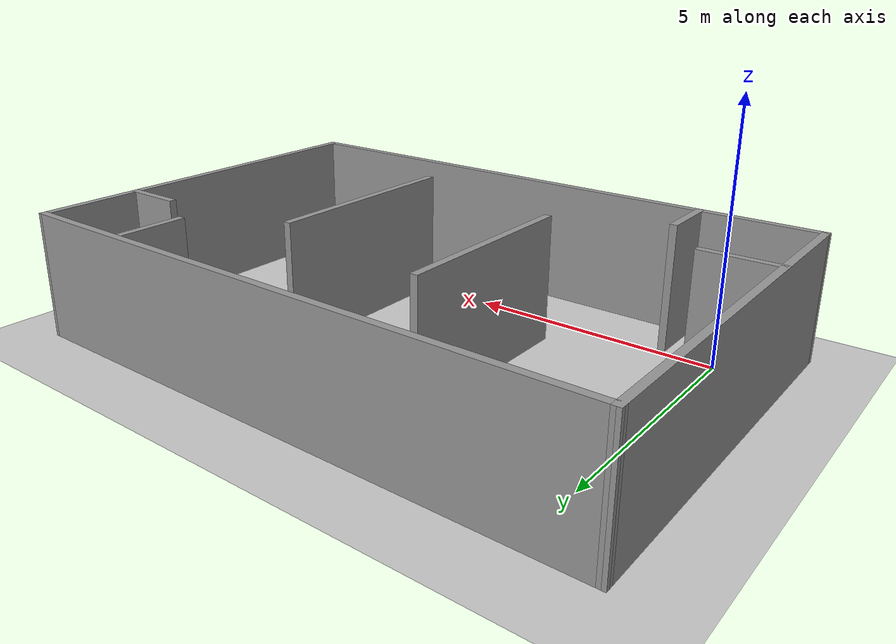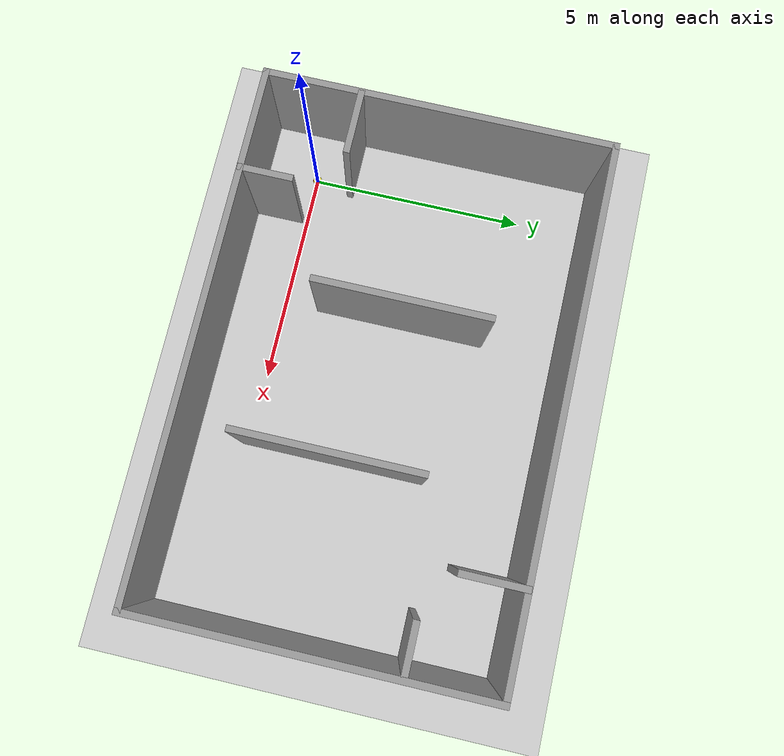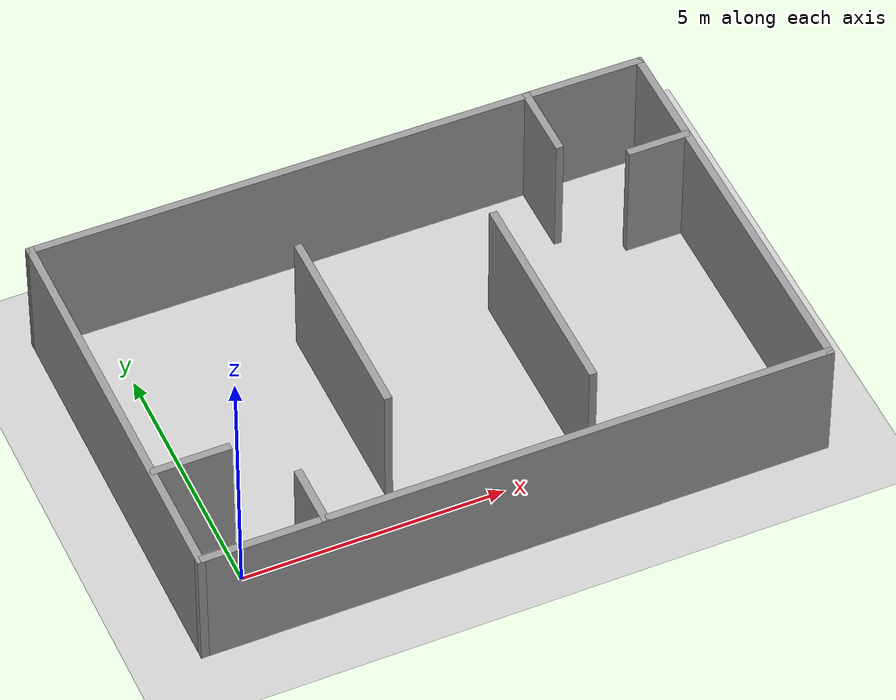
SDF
<sdf version="1.7">
 <world name="default">
  <light name="sun" type="directional">
   <pose>0 0 10 0 -0 0</pose>
   <diffuse>0.8 0.8 0.8 1</diffuse>
   <specular>0.2 0.2 0.2 1</specular>
   <attenuation>
    <range>1000</range>
    <constant>0.9</constant>
    <linear>0.01</linear>
    <quadratic>0.001</quadratic>
   </attenuation>
   <direction>-0.5 0.1 -0.9</direction>
   <spot><inner_angle>0</inner_angle><outer_angle>0</outer_angle><falloff>0</falloff></spot>
  </light>
  <model name="ground_plane">
   <static>1</static>
   <link name="link">
    <collision name="collision">
     <geometry><plane><normal>0 0 1</normal><size>100 100</size></plane></geometry>
     <surface>
      <contact><collide_bitmask>65535</collide_bitmask></contact>
      <friction><ode><mu>100</mu><mu2>50</mu2></ode></friction>
     </surface>
    </collision>
    <visual name="visual">
     <cast_shadows>0</cast_shadows>
     <geometry><plane><normal>0 0 1</normal><size>100 100</size></plane></geometry>
     <material>
      <script><uri>file://media/materials/scripts/gazebo.material</uri><name>Gazebo/Grey</name></script>
     </material>
    </visual>
   </link>
  </model>
  <gravity>0 0 -9.8</gravity>
  <magnetic_field>6e-06 2.3e-05 -4.2e-05</magnetic_field>
  <atmosphere type="adiabatic"/>
  <physics type="ode">
   <max_step_size>0.001</max_step_size>
   <real_time_factor>1</real_time_factor>
   <real_time_update_rate>1000</real_time_update_rate>
  </physics>
  <scene><ambient>0.4 0.4 0.4 1</ambient><background>0.7 0.7 0.7 1</background><shadows>1</shadows></scene>
  <spherical_coordinates>
   <surface_model>EARTH_WGS84</surface_model>
   <latitude_deg>0</latitude_deg>
   <longitude_deg>0</longitude_deg>
   <elevation>0</elevation>
   <heading_deg>0</heading_deg>
  </spherical_coordinates>
  <model name="mycar">
   <link name="base_footprint">
    <inertial>
     <pose>0.00127 0 0.093611 0 -0 0</pose>
     <mass>0.63</mass>
     <inertia>
      <ixx>0.00557395</ixx>
      <ixy>0</ixy>
      <ixz>-1.11111e-05</ixz>
      <iyy>0.00563694</iyy>
      <iyz>0</iyz>
      <izz>0.00261003</izz>
     </inertia>
    </inertial>
    <collision name="base_footprint_fixed_joint_lump__base_link_collision">
     <pose>0 0 0.055 0 -0 0</pose>
     <geometry><cylinder><length>0.08</length><radius>0.1</radius></cylinder></geometry>
    </collision>
    <collision name="base_footprint_fixed_joint_lump__camera_collision_1">
     <pose>0.08 0 0.1075 0 -0 0</pose>
     <geometry><box><size>0.01 0.025 0.025</size></box></geometry>
    </collision>
    <collision name="base_footprint_fixed_joint_lump__support_collision_2">
     <pose>0 0 0.17 0 -0 0</pose>
     <geometry><cylinder><length>0.15</length><radius>0.01</radius></cylinder></geometry>
    </collision>
    <collision name="base_footprint_fixed_joint_lump__laser_collision_3">
     <pose>0 0 0.27 0 -0 0</pose>
     <geometry><cylinder><length>0.05</length><radius>0.03</radius></cylinder></geometry>
    </collision>
    <visual name="base_footprint_visual"><geometry><sphere><radius>0.001</radius></sphere></geometry></visual>
    <visual name="base_footprint_fixed_joint_lump__base_link_visual_1">
     <pose>0 0 0.055 0 -0 0</pose>
     <geometry><cylinder><length>0.08</length><radius>0.1</radius></cylinder></geometry>
     <material>
      <script><name>Gazebo/Yellow</name><uri>file://media/materials/scripts/gazebo.material</uri></script>
     </material>
    </visual>
    <visual name="base_footprint_fixed_joint_lump__camera_visual_2">
     <pose>0.08 0 0.1075 0 -0 0</pose>
     <geometry><box><size>0.01 0.025 0.025</size></box></geometry>
     <material>
      <script><name>Gazebo/Blue</name><uri>file://media/materials/scripts/gazebo.material</uri></script>
     </material>
    </visual>
    <visual name="base_footprint_fixed_joint_lump__support_visual_3">
     <pose>0 0 0.17 0 -0 0</pose>
     <geometry><cylinder><length>0.15</length><radius>0.01</radius></cylinder></geometry>
     <material>
      <script><name>Gazebo/White</name><uri>file://media/materials/scripts/gazebo.material</uri></script>
     </material>
    </visual>
    <visual name="base_footprint_fixed_joint_lump__laser_visual_4">
     <pose>0 0 0.27 0 -0 0</pose>
     <geometry><cylinder><length>0.05</length><radius>0.03</radius></cylinder></geometry>
     <material>
      <script><name>Gazebo/Black</name><uri>file://media/materials/scripts/gazebo.material</uri></script>
     </material>
    </visual>
    <sensor name="rplidar" type="ray">
     <visualize>1</visualize>
     <update_rate>5.5</update_rate>
     <ray>
      <scan>
       <horizontal>
        <samples>360</samples>
        <resolution>1</resolution>
        <min_angle>-3</min_angle>
        <max_angle>3</max_angle>
       </horizontal>
       <vertical><samples>1</samples><min_angle>0</min_angle><max_angle>0</max_angle></vertical>
      </scan>
      <range><min>0.1</min><max>30</max><resolution>0.01</resolution></range>
      <noise><type>gaussian</type><mean>0</mean><stddev>0.01</stddev></noise>
     </ray>
     <plugin name="gazebo_rplidar" filename="libgazebo_ros_laser.so">
      <topicName>/scan</topicName>
      <frameName>laser</frameName>
      <robotNamespace>/</robotNamespace>
     </plugin>
     <pose>0 0 0.27 0 -0 0</pose>
    </sensor>
   </link>
   <joint name="back_wheel2base_link" type="revolute">
    <pose relative_to="base_footprint">-0.0925 0 0.0075 0 -0 0</pose>
    <parent>base_footprint</parent>
    <child>back_wheel</child>
    <axis>
     <xyz>1 1 1</xyz>
     <limit><lower>-1e+16</lower><upper>1e+16</upper></limit>
     <dynamics><spring_reference>0</spring_reference><spring_stiffness>0</spring_stiffness></dynamics>
    </axis>
   </joint>
   <link name="back_wheel">
    <pose relative_to="back_wheel2base_link">0 0 0 0 -0 0</pose>
    <inertial>
     <mass>0.03</mass>
     <inertia>
      <ixx>6.75e-07</ixx>
      <ixy>0</ixy>
      <ixz>0</ixz>
      <iyy>6.75e-07</iyy>
      <iyz>0</iyz>
      <izz>6.75e-07</izz>
     </inertia>
    </inertial>
    <collision name="back_wheel_collision">
     <geometry><sphere><radius>0.0075</radius></sphere></geometry>
    </collision>
    <visual name="back_wheel_visual">
     <geometry><sphere><radius>0.0075</radius></sphere></geometry>
     <material>
      <script><name>Gazebo/Red</name><uri>file://media/materials/scripts/gazebo.material</uri></script>
     </material>
    </visual>
   </link>
   <joint name="front_wheel2base_link" type="revolute">
    <pose relative_to="base_footprint">0.0925 0 0.0075 0 -0 0</pose>
    <parent>base_footprint</parent>
    <child>front_wheel</child>
    <axis>
     <xyz>1 1 1</xyz>
     <limit><lower>-1e+16</lower><upper>1e+16</upper></limit>
     <dynamics><spring_reference>0</spring_reference><spring_stiffness>0</spring_stiffness></dynamics>
    </axis>
   </joint>
   <link name="front_wheel">
    <pose relative_to="front_wheel2base_link">0 0 0 0 -0 0</pose>
    <inertial>
     <mass>0.03</mass>
     <inertia>
      <ixx>6.75e-07</ixx>
      <ixy>0</ixy>
      <ixz>0</ixz>
      <iyy>6.75e-07</iyy>
      <iyz>0</iyz>
      <izz>6.75e-07</izz>
     </inertia>
    </inertial>
    <collision name="front_wheel_collision">
     <geometry><sphere><radius>0.0075</radius></sphere></geometry>
    </collision>
    <visual name="front_wheel_visual">
     <geometry><sphere><radius>0.0075</radius></sphere></geometry>
     <material>
      <script><name>Gazebo/Red</name><uri>file://media/materials/scripts/gazebo.material</uri></script>
     </material>
    </visual>
   </link>
   <joint name="left_wheel2base_link" type="revolute">
    <pose relative_to="base_footprint">0 0.1 0.0325 0 -0 0</pose>
    <parent>base_footprint</parent>
    <child>left_wheel</child>
    <axis>
     <xyz>0 1 0</xyz>
     <limit><lower>-1e+16</lower><upper>1e+16</upper></limit>
     <dynamics><spring_reference>0</spring_reference><spring_stiffness>0</spring_stiffness></dynamics>
    </axis>
   </joint>
   <link name="left_wheel">
    <pose relative_to="left_wheel2base_link">0 0 0 0 -0 0</pose>
    <inertial>
     <mass>0.05</mass>
     <inertia>
      <ixx>1.41406e-05</ixx>
      <ixy>0</ixy>
      <ixz>0</ixz>
      <iyy>1.41406e-05</iyy>
      <iyz>0</iyz>
      <izz>2.64063e-05</izz>
     </inertia>
    </inertial>
    <collision name="left_wheel_collision">
     <pose>0 0 0 1.5708 -0 0</pose>
     <geometry><cylinder><length>0.015</length><radius>0.0325</radius></cylinder></geometry>
    </collision>
    <visual name="left_wheel_visual">
     <pose>0 0 0 1.5708 -0 0</pose>
     <geometry><cylinder><length>0.015</length><radius>0.0325</radius></cylinder></geometry>
     <material>
      <script><name>Gazebo/Red</name><uri>file://media/materials/scripts/gazebo.material</uri></script>
     </material>
    </visual>
   </link>
   <joint name="right_wheel2base_link" type="revolute">
    <pose relative_to="base_footprint">0 -0.1 0.0325 0 -0 0</pose>
    <parent>base_footprint</parent>
    <child>right_wheel</child>
    <axis>
     <xyz>0 1 0</xyz>
     <limit><lower>-1e+16</lower><upper>1e+16</upper></limit>
     <dynamics><spring_reference>0</spring_reference><spring_stiffness>0</spring_stiffness></dynamics>
    </axis>
   </joint>
   <link name="right_wheel">
    <pose relative_to="right_wheel2base_link">0 0 0 0 -0 0</pose>
    <inertial>
     <mass>0.05</mass>
     <inertia>
      <ixx>1.41406e-05</ixx>
      <ixy>0</ixy>
      <ixz>0</ixz>
      <iyy>1.41406e-05</iyy>
      <iyz>0</iyz>
      <izz>2.64063e-05</izz>
     </inertia>
    </inertial>
    <collision name="right_wheel_collision">
     <pose>0 0 0 1.5708 -0 0</pose>
     <geometry><cylinder><length>0.015</length><radius>0.0325</radius></cylinder></geometry>
    </collision>
    <visual name="right_wheel_visual">
     <pose>0 0 0 1.5708 -0 0</pose>
     <geometry><cylinder><length>0.015</length><radius>0.0325</radius></cylinder></geometry>
     <material>
      <script><name>Gazebo/Red</name><uri>file://media/materials/scripts/gazebo.material</uri></script>
     </material>
    </visual>
   </link>
   <static>0</static>
   <plugin name="differential_drive_controller" filename="libgazebo_ros_diff_drive.so">
    <rosDebugLevel>Debug</rosDebugLevel>
    <publishWheelTF>1</publishWheelTF>
    <robotNamespace>/</robotNamespace>
    <publishTf>1</publishTf>
    <publishWheelJointState>1</publishWheelJointState>
    <alwaysOn>1</alwaysOn>
    <updateRate>100.0</updateRate>
    <legacyMode>1</legacyMode>
    <leftJoint>left_wheel2base_link</leftJoint>
    <rightJoint>right_wheel2base_link</rightJoint>
    <wheelSeparation>0.2</wheelSeparation>
    <wheelDiameter>0.065</wheelDiameter>
    <broadcastTF>1</broadcastTF>
    <wheelTorque>30</wheelTorque>
    <wheelAcceleration>1.8</wheelAcceleration>
    <commandTopic>cmd_vel</commandTopic>
    <odometryFrame>odom</odometryFrame>
    <odometryTopic>odom</odometryTopic>
    <robotBaseFrame>base_footprint</robotBaseFrame>
   </plugin>
   <pose>0.000708 -0.0007 0 0 0 -0.007916</pose>
  </model>
  <model name="court">
   <pose>4.67637 2.62402 0 0 -0 0</pose>
   <link name="Wall_18">
    <collision name="Wall_18_Collision">
     <geometry><box><size>12 0.15 2.5</size></box></geometry>
     <pose>0 0 1.25 0 -0 0</pose>
    </collision>
    <visual name="Wall_18_Visual">
     <pose>0 0 1.25 0 -0 0</pose>
     <geometry><box><size>12 0.15 2.5</size></box></geometry>
     <material>
      <script><uri>file://media/materials/scripts/gazebo.material</uri><name>Gazebo/Grey</name></script>
      <ambient>1 1 1 1</ambient>
     </material>
     <meta><layer>0</layer></meta>
    </visual>
    <pose>-0 -3.92513 0 0 -0 3.14159</pose>
   </link>
   <link name="Wall_19">
    <collision name="Wall_19_Collision">
     <geometry><box><size>8 0.15 2.5</size></box></geometry>
     <pose>0 0 1.25 0 -0 0</pose>
    </collision>
    <visual name="Wall_19_Visual">
     <pose>0 0 1.25 0 -0 0</pose>
     <geometry><box><size>8 0.15 2.5</size></box></geometry>
     <material>
      <script><uri>file://media/materials/scripts/gazebo.material</uri><name>Gazebo/Grey</name></script>
      <ambient>1 1 1 1</ambient>
     </material>
     <meta><layer>0</layer></meta>
    </visual>
    <pose>-5.925 -0.000127 0 0 -0 1.5708</pose>
   </link>
   <link name="Wall_20">
    <collision name="Wall_20_Collision">
     <geometry><box><size>12.0001 0.15 2.5</size></box></geometry>
     <pose>0 0 1.25 0 -0 0</pose>
    </collision>
    <visual name="Wall_20_Visual">
     <pose>0 0 1.25 0 -0 0</pose>
     <geometry><box><size>12.0001 0.15 2.5</size></box></geometry>
     <material>
      <script><uri>file://media/materials/scripts/gazebo.material</uri><name>Gazebo/Grey</name></script>
      <ambient>1 1 1 1</ambient>
     </material>
     <meta><layer>0</layer></meta>
    </visual>
    <pose>-0 3.90476 0 0 -0 -0.003395</pose>
   </link>
   <link name="Wall_22">
    <collision name="Wall_22_Collision">
     <geometry><box><size>1.5 0.15 2.5</size></box></geometry>
     <pose>0 0 1.25 0 -0 0</pose>
    </collision>
    <visual name="Wall_22_Visual">
     <pose>0 0 1.25 0 -0 0</pose>
     <geometry><box><size>1.5 0.15 2.5</size></box></geometry>
     <material>
      <script><uri>file://media/materials/scripts/gazebo.material</uri><name>Gazebo/Grey</name></script>
      <ambient>1 1 1 1</ambient>
     </material>
     <meta><layer>0</layer></meta>
    </visual>
    <pose>-5.2112 -1.7604 0 0 -0 0</pose>
   </link>
   <link name="Wall_24">
    <collision name="Wall_24_Collision">
     <geometry><box><size>1.25 0.15 2.5</size></box></geometry>
     <pose>0 0 1.25 0 -0 0</pose>
    </collision>
    <visual name="Wall_24_Visual">
     <pose>0 0 1.25 0 -0 0</pose>
     <geometry><box><size>1.25 0.15 2.5</size></box></geometry>
     <material>
      <script><uri>file://media/materials/scripts/gazebo.material</uri><name>Gazebo/Grey</name></script>
      <ambient>1 1 1 1</ambient>
     </material>
     <meta><layer>0</layer></meta>
    </visual>
    <pose>-3.62519 -3.36502 0 0 -0 1.5708</pose>
   </link>
   <link name="Wall_26">
    <collision name="Wall_26_Collision">
     <geometry><box><size>4 0.15 2.5</size></box></geometry>
     <pose>0 0 1.25 0 -0 0</pose>
    </collision>
    <visual name="Wall_26_Visual">
     <pose>0 0 1.25 0 -0 0</pose>
     <geometry><box><size>4 0.15 2.5</size></box></geometry>
     <material>
      <script><uri>file://media/materials/scripts/gazebo.material</uri><name>Gazebo/Grey</name></script>
      <ambient>1 1 1 1</ambient>
     </material>
     <meta><layer>0</layer></meta>
    </visual>
    <pose>-1.55037 0.145024 0 0 -0 -1.5708</pose>
   </link>
   <link name="Wall_28">
    <collision name="Wall_28_Collision">
     <geometry><box><size>4.25 0.15 2.5</size></box></geometry>
     <pose>0 0 1.25 0 -0 0</pose>
    </collision>
    <visual name="Wall_28_Visual">
     <pose>0 0 1.25 0 -0 0</pose>
     <geometry><box><size>4.25 0.15 2.5</size></box></geometry>
     <material>
      <script><uri>file://media/materials/scripts/gazebo.material</uri><name>Gazebo/Grey</name></script>
      <ambient>1 1 1 1</ambient>
     </material>
     <meta><layer>0</layer></meta>
    </visual>
    <pose>1.93426 -0.645191 0 0 -0 -1.5708</pose>
   </link>
   <link name="Wall_30">
    <collision name="Wall_30_Collision">
     <geometry><box><size>1.5 0.15 2.5</size></box></geometry>
     <pose>0 0 1.25 0 -0 0</pose>
    </collision>
    <visual name="Wall_30_Visual">
     <pose>0 0 1.25 0 -0 0</pose>
     <geometry><box><size>1.5 0.15 2.5</size></box></geometry>
     <material>
      <script><uri>file://media/materials/scripts/gazebo.material</uri><name>Gazebo/Grey</name></script>
      <ambient>1 1 1 1</ambient>
     </material>
     <meta><layer>0</layer></meta>
    </visual>
    <pose>3.68987 3.20384 0 0 -0 -1.5708</pose>
   </link>
   <link name="Wall_32">
    <collision name="Wall_32_Collision">
     <geometry><box><size>1.25 0.15 2.5</size></box></geometry>
     <pose>0 0 1.25 0 -0 0</pose>
    </collision>
    <visual name="Wall_32_Visual">
     <pose>0 0 1.25 0 -0 0</pose>
     <geometry><box><size>1.25 0.15 2.5</size></box></geometry>
     <material>
      <script><uri>file://media/materials/scripts/gazebo.material</uri><name>Gazebo/Grey</name></script>
      <ambient>1 1 1 1</ambient>
     </material>
     <meta><layer>0</layer></meta>
    </visual>
    <pose>5.37429 1.85722 0 0 -0 3.14159</pose>
   </link>
   <link name="Wall_6">
    <collision name="Wall_6_Collision">
     <geometry><box><size>7.95977 0.15 2.5</size></box></geometry>
     <pose>0 0 1.25 0 -0 0</pose>
    </collision>
    <visual name="Wall_6_Visual">
     <pose>0 0 1.25 0 -0 0</pose>
     <geometry><box><size>7.95977 0.15 2.5</size></box></geometry>
     <material>
      <script><uri>file://media/materials/scripts/gazebo.material</uri><name>Gazebo/Grey</name></script>
      <ambient>1 1 1 1</ambient>
     </material>
     <meta><layer>0</layer></meta>
    </visual>
    <pose>5.925 -0.02024 0 0 -0 1.5708</pose>
   </link>
   <static>1</static>
  </model>
 </world>
</sdf>
